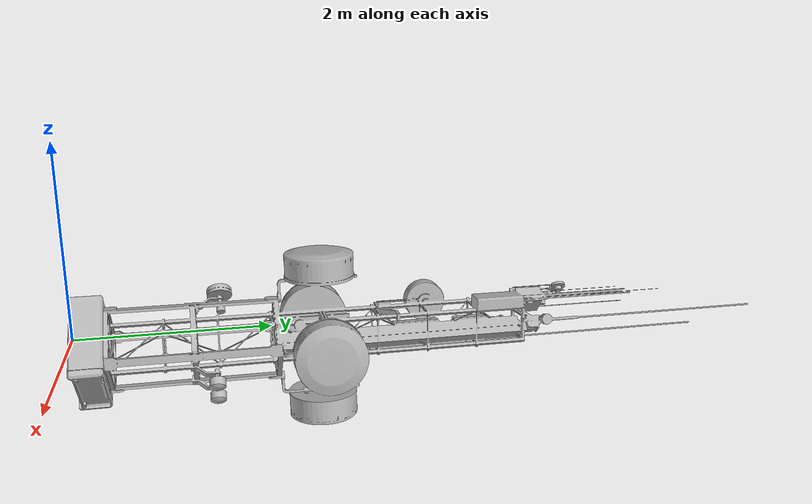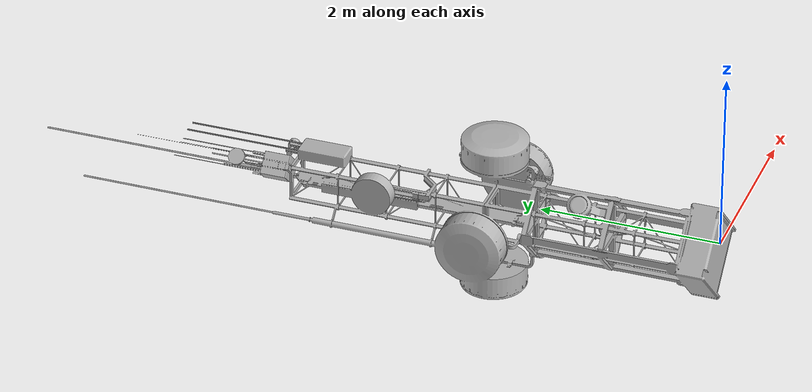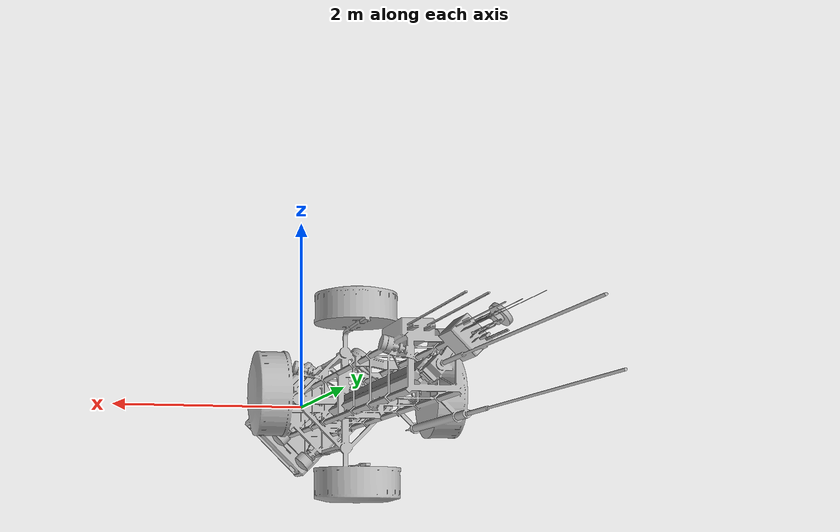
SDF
<?xml version="1.0"?>
<sdf version="1.7">
  <model name="radio_tower_">
    <static>true</static>
    <link name="link">
      <visual name="visual">
        <geometry>
          <mesh>
            <uri>model://tower/radio_tower.obj</uri>
          </mesh>
        </geometry>
      </visual>
      <collision name="collision">
        <geometry>
          <mesh>
            <uri>model://tower/radio_tower.obj</uri>
          </mesh>
        </geometry>
      </collision>
    </link>
  </model>
</sdf>
